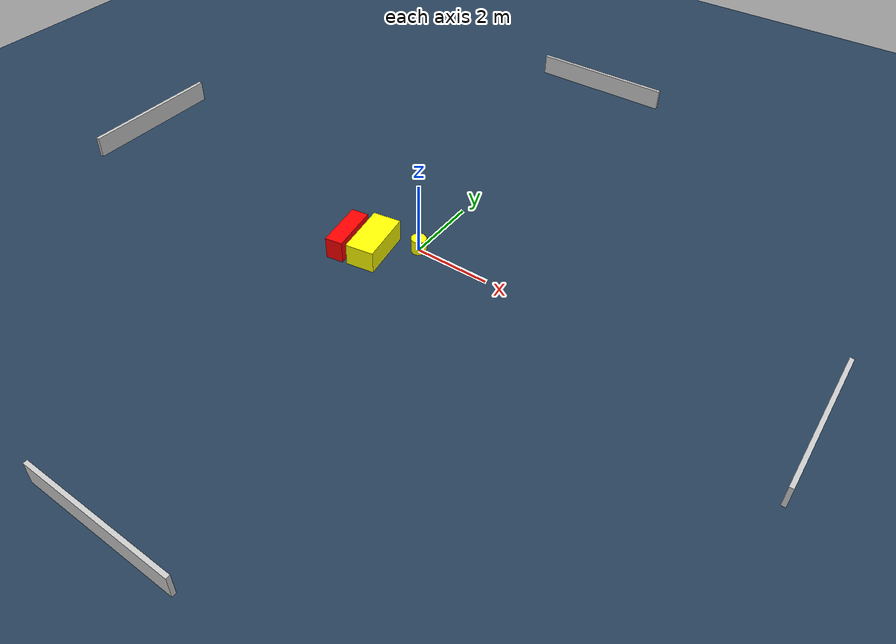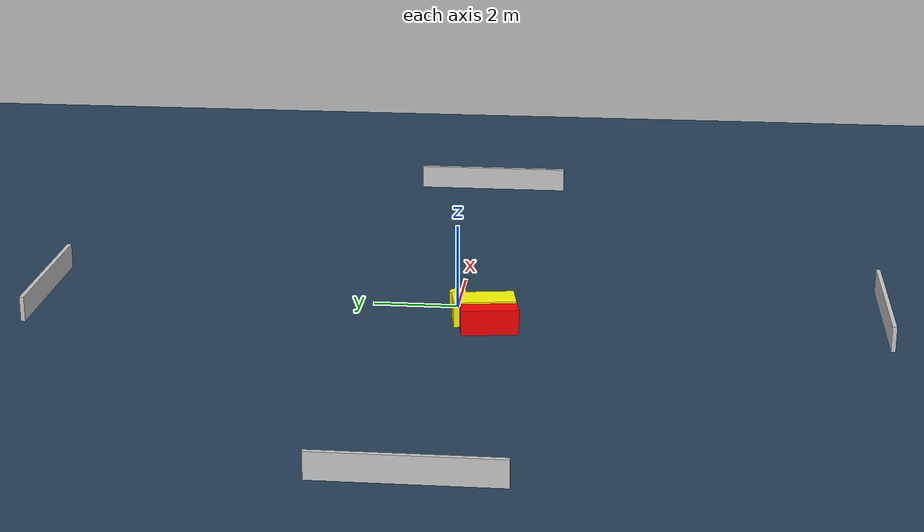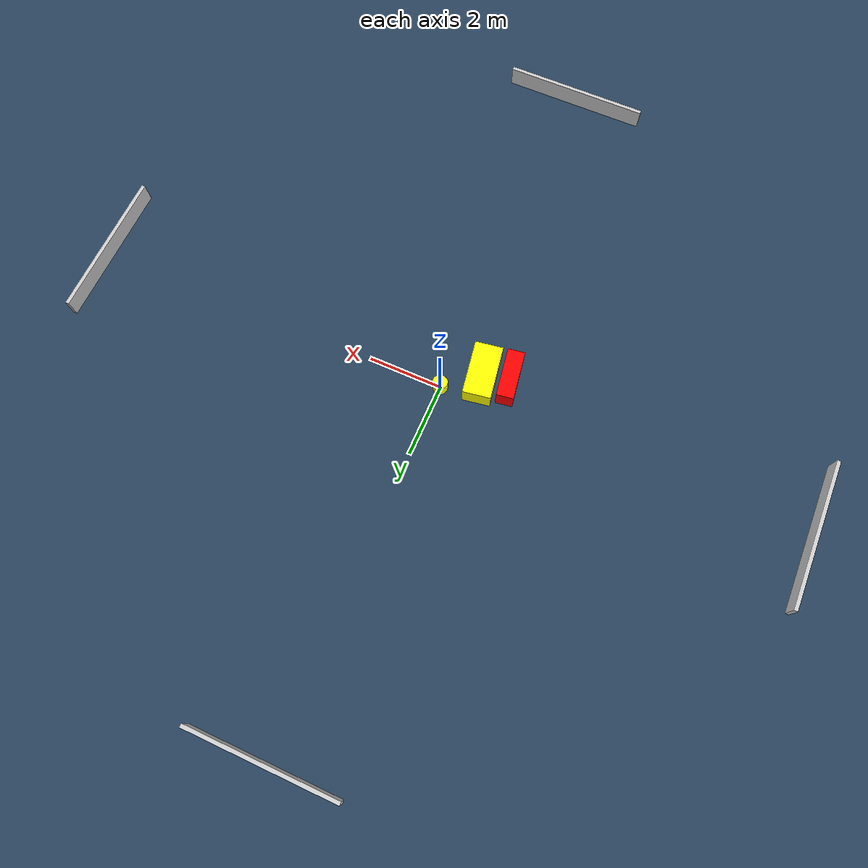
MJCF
<?xml version="1.0" ?>
<mujoco model="generated_environment">
  <option timestep="0.01" integrator="RK4" cone="elliptic"/>
  <default>
    <geom density="1"/>
  </default>
  <asset>
    <texture builtin="gradient" height="3072" name="skybox" rgb1="0.3 0.5 0.7" rgb2="0 0 0" type="skybox" width="512"/>
    <texture builtin="checker" height="300" name="groundplane" rgb1="0.2 0.3 0.4" rgb2="0.1 0.2 0.3" type="2d" width="300"/>
    <material name="groundplane" reflectance="0.2" texrepeat="5 5" texture="groundplane"/>
  </asset>
  <worldbody>
    <light dir="0 0 -1" directional="true" pos="0 0 1.5"/>
    <geom condim="3" friction="0.5 0.005 0.001" material="groundplane" name="floor" pos="0 0 0" size="0 0 0.05" type="plane"/>
    <body name="walls">
      <geom name="wall_1" condim="4" pos="-10.0 0.0 0.3" rgba="0.800000011920929 0.800000011920929 0.800000011920929 1.0" size="0.05 2.0 0.3" type="box"/>
      <geom name="wall_2" condim="4" pos="10.0 0.0 0.3" rgba="0.800000011920929 0.800000011920929 0.800000011920929 1.0" size="0.05 2.0 0.3" type="box"/>
      <geom name="wall_3" condim="4" pos="0.0 -10.0 0.3" rgba="0.800000011920929 0.800000011920929 0.800000011920929 1.0" size="2.0 0.05 0.3" type="box"/>
      <geom name="wall_4" condim="4" pos="0.0 10.0 0.3" rgba="0.800000011920929 0.800000011920929 0.800000011920929 1.0" size="2.0 0.05 0.3" type="box"/>
    </body>
    <body name="robot">
      <joint name="joint_x" type="slide" pos="0 0 0" axis="1 0 0"/>
      <joint name="joint_y" type="slide" pos="0 0 0" axis="0 1 0"/>
      <geom name="robot" type="cylinder" pos="0.0 0.0 0.2" size="0.2 0.2 0.0" mass="5.0" friction="1.0 0.005 0.0001" condim="4" rgba="1.0 1.0 0.0 1.0"/>
    </body>
    <body name="obstacle_1_movable">
      <geom name="obstacle_1_movable" condim="4" pos="-0.9052194015729691 -0.6954788906995841 0.3" euler="0 0 279.10694391389103" friction="0.0 0.005 0.001" rgba="1.0 1.0 0.0 1.0" size="0.7282850273797155 0.37710405921119305 0.3" type="box" mass="0.1"/>
      <joint type="free"/>
    </body>
    <body name="obstacle_2_static">
      <geom name="obstacle_2_static" condim="4" pos="-1.6073918481487417 -0.880592880535285 0.3" euler="0 0 98.82445152676982" friction="0.0 0.005 0.001" rgba="1.0 0.0 0.0 1.0" size="0.663916364596177 0.2323060525693828 0.3" type="box"/>
    </body>
  </worldbody>
  <actuator>
    <motor name="actuator_x" joint="joint_x" gear="1" ctrlrange="-1 1"/>
    <motor name="actuator_y" joint="joint_y" gear="1" ctrlrange="-1 1"/>
  </actuator>
</mujoco>
